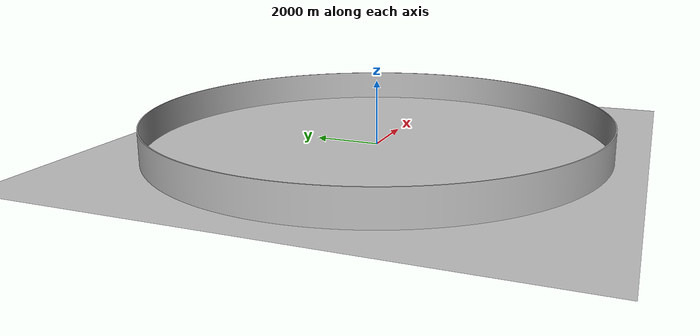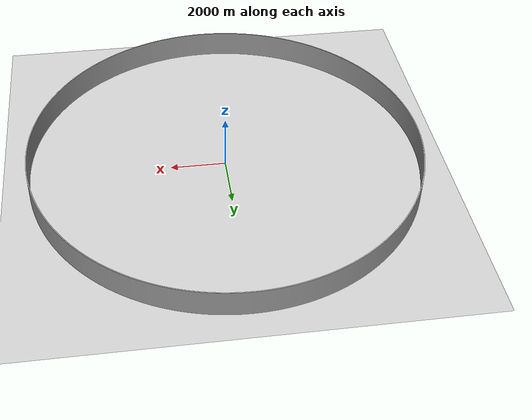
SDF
<?xml version="1.0" encoding="UTF-8"?>
<!-- world generated by create_worlds.py -->
<sdf version="1.8">
  <world name="lab">
    <physics name="1ms" type="ignored">
      <max_step_size>0.001</max_step_size>
      <real_time_factor>1.0</real_time_factor>
    </physics>
    <plugin
      filename="ignition-gazebo-physics-system"
      name="gz::sim::systems::Physics">
    </plugin>
    <plugin
      filename="ignition-gazebo-sensors-system"
      name="gz::sim::systems::Sensors">
      <render_engine>ogre2</render_engine>
    </plugin>
    <plugin filename="libignition-gazebo-contact-system.so"
        name="ignition::gazebo::systems::Contact">
    </plugin>
    <plugin
      filename="ignition-gazebo-scene-broadcaster-system"
      name="gz::sim::systems::SceneBroadcaster">
    </plugin>
    <plugin
      filename="ignition-gazebo-user-commands-system"
      name="gz::sim::systems::UserCommands">
    </plugin>
    <plugin
      filename="BasicSystem"
      name="multi_arm_lab_sim_gazebo::BasicSystem">
    </plugin>
    <plugin
      filename="FullSystem"
      name="multi_arm_lab_sim_gazebo::FullSystem">
    </plugin>

    <gui>
      <camera name="user_camera">
        <pose>0.846027 1.34839 1.39925 0 0.314 -2.35919</pose>
        <view_controller>orbit</view_controller>
        <projection_type>perspective</projection_type>
      </camera>
    </gui>

    <scene>
      <ambient>0.5 0.5 0.5 1</ambient>
      <background>0.5 0.5 0.5 1</background>
    </scene>

    <light name="sun" type="directional">
      <cast_shadows>true</cast_shadows>
      <pose>0 0 10 0 0 0</pose>
      <diffuse>0.8 0.8 0.8 1</diffuse>
      <specular>0.2 0.2 0.2 1</specular>
      <attenuation>
        <range>1000</range>
        <constant>0.9</constant>
        <linear>0.01</linear>
        <quadratic>0.001</quadratic>
      </attenuation>
      <direction>-0.5 0.1 -0.9</direction>
    </light>

    <model name="ground_plane">
      <static>true</static>
      <link name="link">
        <collision name="collision">
          <geometry>
            <plane>
              <normal>0 0 1</normal>
              <size>100 100</size>
            </plane>
          </geometry>
        </collision>
        <visual name="visual">
          <geometry>
            <plane>
              <normal>0 0 1</normal>
              <size>100 100</size>
            </plane>
          </geometry>
          <material>
            <ambient>0.8 0.8 0.8 1</ambient>
            <diffuse>0.8 0.8 0.8 1</diffuse>
            <specular>0.8 0.8 0.8 1</specular>
          </material>
        </visual>
      </link>
    </model>

    <model name="lab">
    <self_collide>true</self_collide>
    <include merge="true">
        <uri>package://multi_arm_lab_sim_description/models/lab</uri>
        <pose>0 0 0 0 0 -2.5</pose>
    </include>
    </model>

  </world>
</sdf>

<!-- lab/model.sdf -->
<sdf version="1.8">
  <model name="lab">
    <static>true</static>
    <link name="link">
      <collision name="object_collision">
        <geometry>
          <mesh>
            <uri>lab.dae</uri>
          </mesh>
        </geometry>
      </collision>
      <visual name="object_visual">
        <geometry>
          <mesh>
            <uri>lab.dae</uri>
          </mesh>
        </geometry>
      </visual>
    </link>
  </model>
</sdf>
